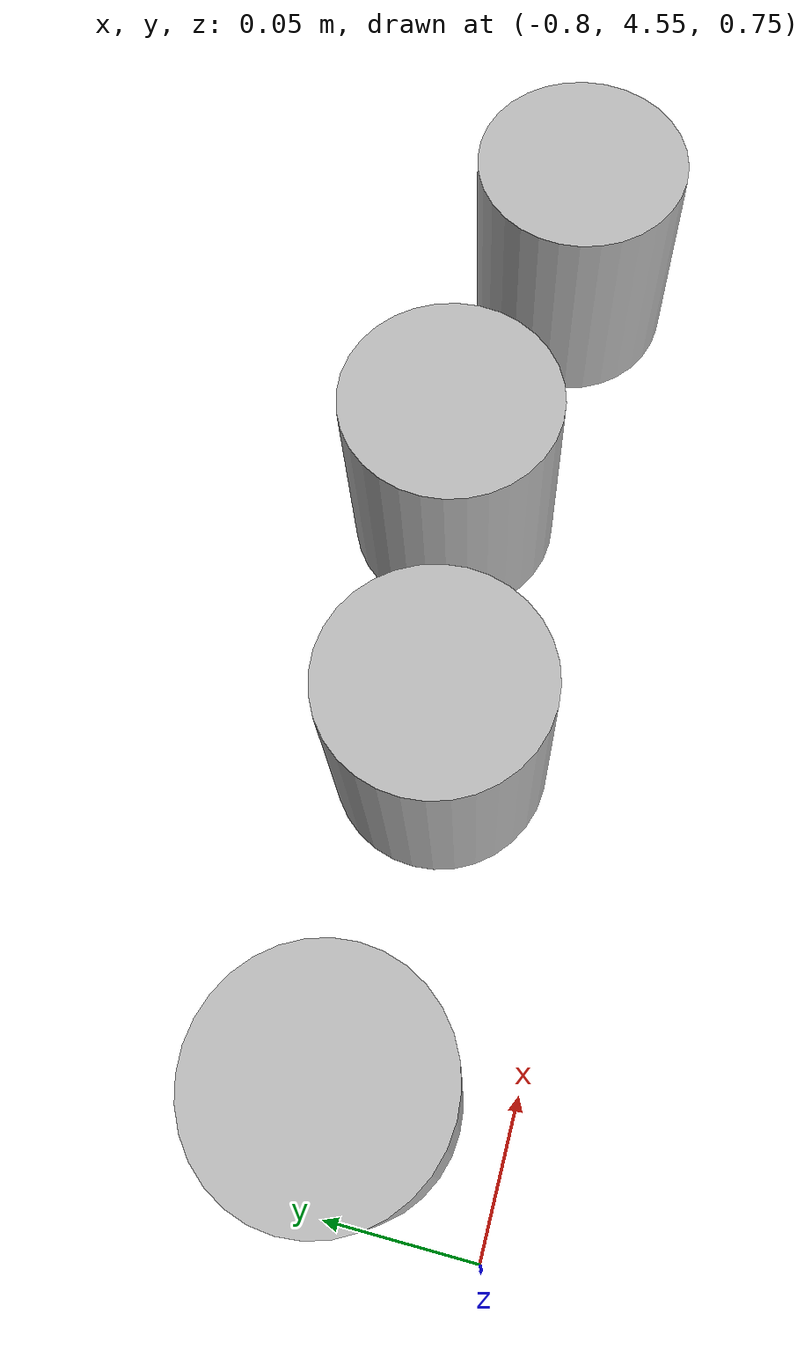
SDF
<sdf version="1.6">
 <world name="default">
  <model name="ground_plane">
   <static>1</static>
   <link name="link">
    <collision name="collision">
     <geometry><plane><normal>0 0 1</normal><size>100 100</size></plane></geometry>
     <surface><friction><ode><mu>100</mu><mu2>50</mu2></ode></friction></surface>
    </collision>
    <visual name="visual">
     <cast_shadows>0</cast_shadows>
     <geometry><plane><normal>0 0 1</normal><size>100 100</size></plane></geometry>
     <material>
      <script><uri>file://media/materials/scripts/gazebo.material</uri><name>Gazebo/Grey</name></script>
     </material>
    </visual>
   </link>
  </model>
  <model name="cans">
   <link name="link">
    <inertial>
     <mass>0.362409</mass>
     <inertia>
      <ixx>0.00022647</ixx>
      <ixy>0</ixy>
      <ixz>0</ixz>
      <iyy>0.00022647</iyy>
      <iyz>0</iyz>
      <izz>0.0001015</izz>
     </inertia>
     <pose>0 0 0.2 0 -0 0</pose>
    </inertial>
    <self_collide>1</self_collide>
    <kinematic>1</kinematic>
    <visual name="ModelPreview_8::link::visual_1">
     <geometry><mesh><uri>model://cans/meshes/cylindermesh.dae</uri><scale>1 1 1</scale></mesh></geometry>
     <material>
      <script>
       <uri>model://cans/materials/scripts</uri>
       <uri>model://cans/materials/textures</uri>
       <name>cylinder</name>
      </script>
     </material>
    </visual>
    <visual name="visual">
     <geometry><mesh><uri>model://cans/meshes/cylindermesh.dae</uri><scale>1 1 1</scale></mesh></geometry>
     <material>
      <script>
       <uri>model://cans/materials/scripts</uri>
       <uri>model://cans/materials/textures</uri>
       <name>cylinder</name>
      </script>
     </material>
    </visual>
    <collision name="collision">
     <geometry><mesh><uri>model://cans/meshes/cylindermesh.dae</uri><scale>1 1 1</scale></mesh></geometry>
     <surface>
      <friction>
       <ode><mu>1</mu><mu2>1</mu2><fdir1>0 0 0</fdir1><slip1>0</slip1><slip2>0</slip2></ode>
       <torsional>
        <coefficient>1</coefficient>
        <patch_radius>0</patch_radius>
        <surface_radius>0</surface_radius>
        <use_patch_radius>1</use_patch_radius>
        <ode><slip>0</slip></ode>
       </torsional>
      </friction>
      <bounce><restitution_coefficient>0</restitution_coefficient><threshold>1e+06</threshold></bounce>
      <contact>
       <collide_without_contact>0</collide_without_contact>
       <collide_without_contact_bitmask>1</collide_without_contact_bitmask>
       <collide_bitmask>1</collide_bitmask>
       <ode>
        <soft_cfm>0</soft_cfm>
        <soft_erp>0.2</soft_erp>
        <kp>1e+13</kp>
        <kd>1</kd>
        <max_vel>0.01</max_vel>
        <min_depth>0</min_depth>
       </ode>
       <bullet>
        <split_impulse>1</split_impulse>
        <split_impulse_penetration_threshold>-0.01</split_impulse_penetration_threshold>
        <soft_cfm>0</soft_cfm>
        <soft_erp>0.2</soft_erp>
        <kp>1e+13</kp>
        <kd>1</kd>
       </bullet>
      </contact>
     </surface>
    </collision>
   </link>
   <static>0</static>
   <pose>-0.568374 4.61886 0.815 0 -0 0</pose>
  </model>
  <model name="cans_0">
   <link name="link">
    <inertial>
     <mass>0.362409</mass>
     <inertia>
      <ixx>0.00022647</ixx>
      <ixy>0</ixy>
      <ixz>0</ixz>
      <iyy>0.00022647</iyy>
      <iyz>0</iyz>
      <izz>0.0001015</izz>
     </inertia>
     <pose>0 0 0.2 0 -0 0</pose>
    </inertial>
    <self_collide>1</self_collide>
    <kinematic>1</kinematic>
    <visual name="ModelPreview_8::link::visual_1">
     <geometry><mesh><uri>model://cans/meshes/cylindermesh.dae</uri><scale>1 1 1</scale></mesh></geometry>
     <material>
      <script>
       <uri>model://cans/materials/scripts</uri>
       <uri>model://cans/materials/textures</uri>
       <name>cylinder</name>
      </script>
     </material>
    </visual>
    <visual name="visual">
     <geometry><mesh><uri>model://cans/meshes/cylindermesh.dae</uri><scale>1 1 1</scale></mesh></geometry>
     <material>
      <script>
       <uri>model://cans/materials/scripts</uri>
       <uri>model://cans/materials/textures</uri>
       <name>cylinder</name>
      </script>
     </material>
    </visual>
    <collision name="collision">
     <geometry><mesh><uri>model://cans/meshes/cylindermesh.dae</uri><scale>1 1 1</scale></mesh></geometry>
     <surface>
      <friction>
       <ode><mu>1</mu><mu2>1</mu2><fdir1>0 0 0</fdir1><slip1>0</slip1><slip2>0</slip2></ode>
       <torsional>
        <coefficient>1</coefficient>
        <patch_radius>0</patch_radius>
        <surface_radius>0</surface_radius>
        <use_patch_radius>1</use_patch_radius>
        <ode><slip>0</slip></ode>
       </torsional>
      </friction>
      <bounce><restitution_coefficient>0</restitution_coefficient><threshold>1e+06</threshold></bounce>
      <contact>
       <collide_without_contact>0</collide_without_contact>
       <collide_without_contact_bitmask>1</collide_without_contact_bitmask>
       <collide_bitmask>1</collide_bitmask>
       <ode>
        <soft_cfm>0</soft_cfm>
        <soft_erp>0.2</soft_erp>
        <kp>1e+13</kp>
        <kd>1</kd>
        <max_vel>0.01</max_vel>
        <min_depth>0</min_depth>
       </ode>
       <bullet>
        <split_impulse>1</split_impulse>
        <split_impulse_penetration_threshold>-0.01</split_impulse_penetration_threshold>
        <soft_cfm>0</soft_cfm>
        <soft_erp>0.2</soft_erp>
        <kp>1e+13</kp>
        <kd>1</kd>
       </bullet>
      </contact>
     </surface>
    </collision>
   </link>
   <static>0</static>
   <pose>-0.766388 4.6 0.815 0 -0 0</pose>
  </model>
  <model name="cans_1">
   <link name="link">
    <inertial>
     <mass>0.362409</mass>
     <inertia>
      <ixx>0.00022647</ixx>
      <ixy>0</ixy>
      <ixz>0</ixz>
      <iyy>0.00022647</iyy>
      <iyz>0</iyz>
      <izz>0.0001015</izz>
     </inertia>
     <pose>0 0 0.2 0 -0 0</pose>
    </inertial>
    <self_collide>1</self_collide>
    <kinematic>1</kinematic>
    <visual name="ModelPreview_8::link::visual_1">
     <geometry><mesh><uri>model://cans/meshes/cylindermesh.dae</uri><scale>1 1 1</scale></mesh></geometry>
     <material>
      <script>
       <uri>model://cans/materials/scripts</uri>
       <uri>model://cans/materials/textures</uri>
       <name>cylinder</name>
      </script>
     </material>
    </visual>
    <visual name="visual">
     <geometry><mesh><uri>model://cans/meshes/cylindermesh.dae</uri><scale>1 1 1</scale></mesh></geometry>
     <material>
      <script>
       <uri>model://cans/materials/scripts</uri>
       <uri>model://cans/materials/textures</uri>
       <name>cylinder</name>
      </script>
     </material>
    </visual>
    <collision name="collision">
     <geometry><mesh><uri>model://cans/meshes/cylindermesh.dae</uri><scale>1 1 1</scale></mesh></geometry>
     <surface>
      <friction>
       <ode><mu>1</mu><mu2>1</mu2><fdir1>0 0 0</fdir1><slip1>0</slip1><slip2>0</slip2></ode>
       <torsional>
        <coefficient>1</coefficient>
        <patch_radius>0</patch_radius>
        <surface_radius>0</surface_radius>
        <use_patch_radius>1</use_patch_radius>
        <ode><slip>0</slip></ode>
       </torsional>
      </friction>
      <bounce><restitution_coefficient>0</restitution_coefficient><threshold>1e+06</threshold></bounce>
      <contact>
       <collide_without_contact>0</collide_without_contact>
       <collide_without_contact_bitmask>1</collide_without_contact_bitmask>
       <collide_bitmask>1</collide_bitmask>
       <ode>
        <soft_cfm>0</soft_cfm>
        <soft_erp>0.2</soft_erp>
        <kp>1e+13</kp>
        <kd>1</kd>
        <max_vel>0.01</max_vel>
        <min_depth>0</min_depth>
       </ode>
       <bullet>
        <split_impulse>1</split_impulse>
        <split_impulse_penetration_threshold>-0.01</split_impulse_penetration_threshold>
        <soft_cfm>0</soft_cfm>
        <soft_erp>0.2</soft_erp>
        <kp>1e+13</kp>
        <kd>1</kd>
       </bullet>
      </contact>
     </surface>
    </collision>
   </link>
   <static>0</static>
   <pose>-0.65743 4.6 0.815 0 -0 0</pose>
  </model>
  <model name="cans_2">
   <link name="link">
    <inertial>
     <mass>0.362409</mass>
     <inertia>
      <ixx>0.00022647</ixx>
      <ixy>0</ixy>
      <ixz>0</ixz>
      <iyy>0.00022647</iyy>
      <iyz>0</iyz>
      <izz>0.0001015</izz>
     </inertia>
     <pose>0 0 0.2 0 -0 0</pose>
    </inertial>
    <self_collide>1</self_collide>
    <kinematic>1</kinematic>
    <visual name="ModelPreview_8::link::visual_1">
     <geometry><mesh><uri>model://cans/meshes/cylindermesh.dae</uri><scale>1 1 1</scale></mesh></geometry>
     <material>
      <script>
       <uri>model://cans/materials/scripts</uri>
       <uri>model://cans/materials/textures</uri>
       <name>cylinder</name>
      </script>
     </material>
    </visual>
    <visual name="visual">
     <geometry><mesh><uri>model://cans/meshes/cylindermesh.dae</uri><scale>1 1 1</scale></mesh></geometry>
     <material>
      <script>
       <uri>model://cans/materials/scripts</uri>
       <uri>model://cans/materials/textures</uri>
       <name>cylinder</name>
      </script>
     </material>
    </visual>
    <collision name="collision">
     <geometry><mesh><uri>model://cans/meshes/cylindermesh.dae</uri><scale>1 1 1</scale></mesh></geometry>
     <surface>
      <friction>
       <ode><mu>1</mu><mu2>1</mu2><fdir1>0 0 0</fdir1><slip1>0</slip1><slip2>0</slip2></ode>
       <torsional>
        <coefficient>1</coefficient>
        <patch_radius>0</patch_radius>
        <surface_radius>0</surface_radius>
        <use_patch_radius>1</use_patch_radius>
        <ode><slip>0</slip></ode>
       </torsional>
      </friction>
      <bounce><restitution_coefficient>0</restitution_coefficient><threshold>1e+06</threshold></bounce>
      <contact>
       <collide_without_contact>0</collide_without_contact>
       <collide_without_contact_bitmask>1</collide_without_contact_bitmask>
       <collide_bitmask>1</collide_bitmask>
       <ode>
        <soft_cfm>0</soft_cfm>
        <soft_erp>0.2</soft_erp>
        <kp>1e+13</kp>
        <kd>1</kd>
        <max_vel>0.01</max_vel>
        <min_depth>0</min_depth>
       </ode>
       <bullet>
        <split_impulse>1</split_impulse>
        <split_impulse_penetration_threshold>-0.01</split_impulse_penetration_threshold>
        <soft_cfm>0</soft_cfm>
        <soft_erp>0.2</soft_erp>
        <kp>1e+13</kp>
        <kd>1</kd>
       </bullet>
      </contact>
     </surface>
    </collision>
   </link>
   <static>0</static>
   <pose>-0.46855 4.6 0.815 0 -0 0</pose>
  </model>
 </world>
</sdf>
